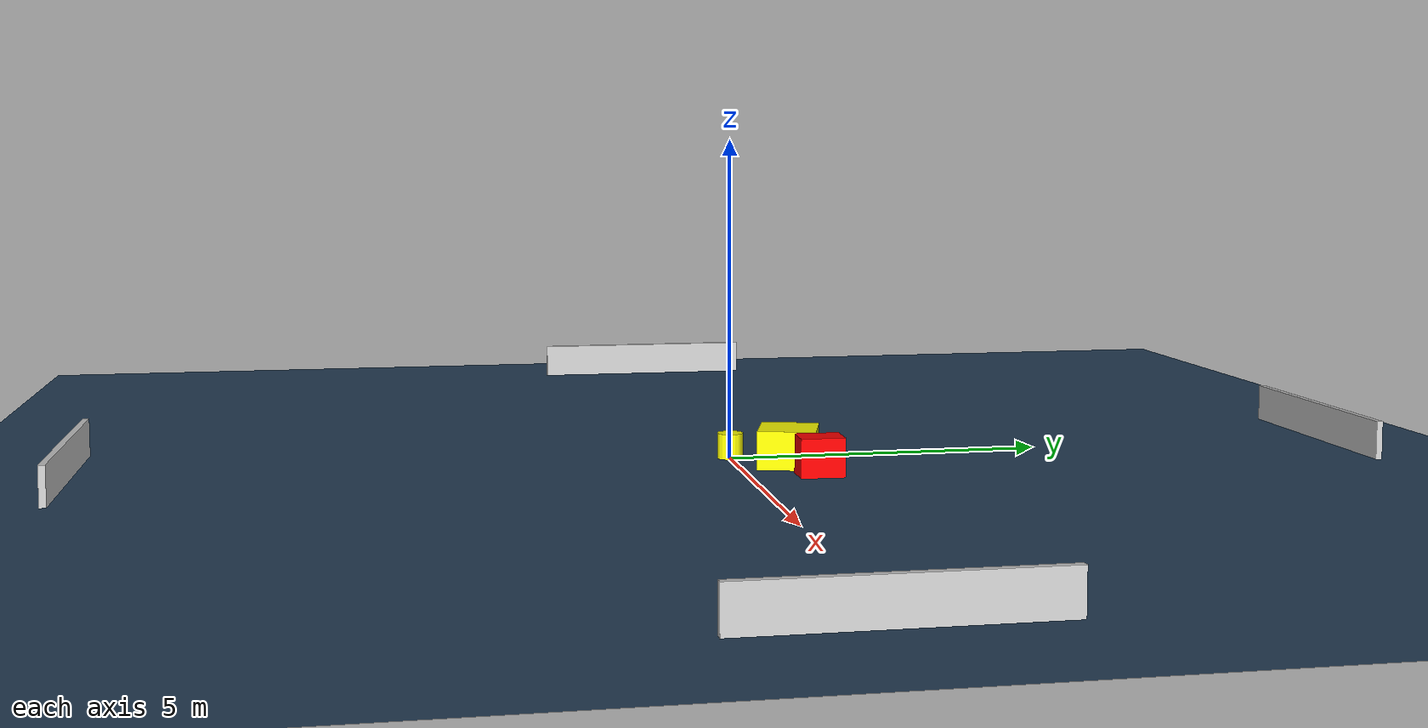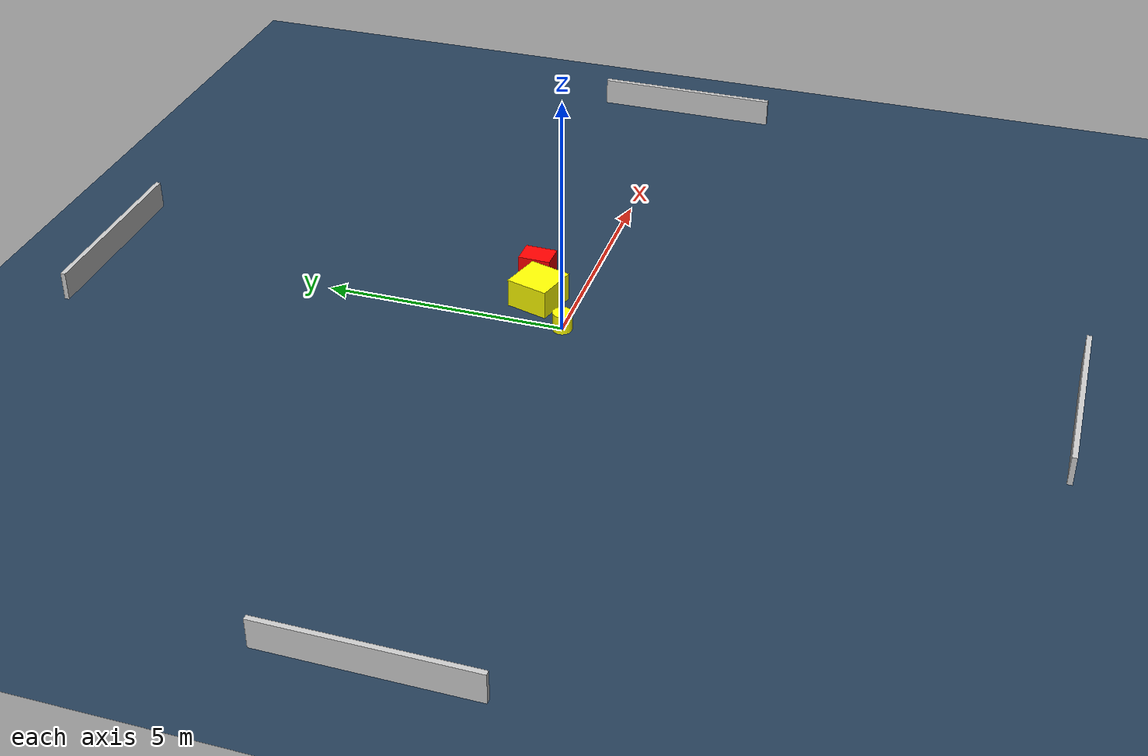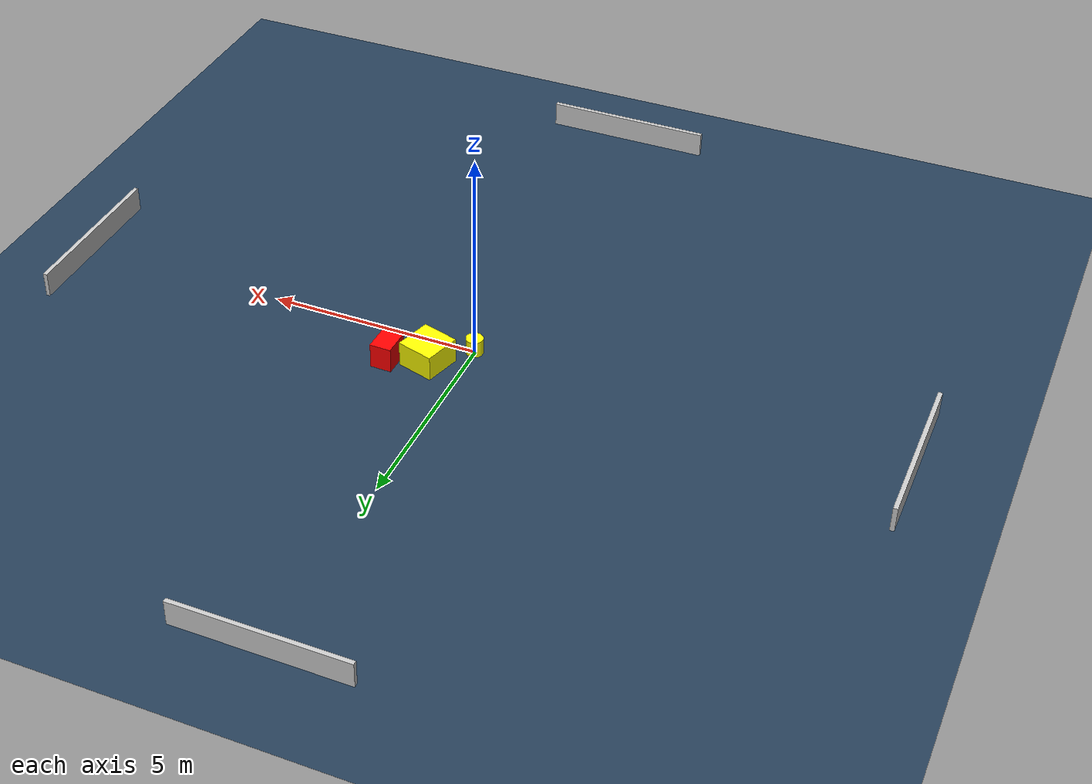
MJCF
<?xml version="1.0" ?>
<mujoco model="generated_environment">
  <option timestep="0.01" integrator="RK4" cone="elliptic"/>
  <default>
    <geom density="1"/>
  </default>
  <asset>
    <texture builtin="gradient" height="3072" name="skybox" rgb1="0.3 0.5 0.7" rgb2="0 0 0" type="skybox" width="512"/>
    <texture builtin="checker" height="300" name="groundplane" rgb1="0.2 0.3 0.4" rgb2="0.1 0.2 0.3" type="2d" width="300"/>
    <material name="groundplane" reflectance="0.2" texrepeat="5 5" texture="groundplane"/>
  </asset>
  <worldbody>
    <light dir="0 0 -1" directional="true" pos="0 0 1.5"/>
    <geom condim="3" friction="0.5 0.005 0.001" material="groundplane" name="floor" pos="0 0 0" size="0 0 0.05" type="plane"/>
    <body name="walls">
      <geom name="wall_1" condim="4" pos="-10.0 0.0 0.3" rgba="0.800000011920929 0.800000011920929 0.800000011920929 1.0" size="0.05 2.0 0.3" type="box"/>
      <geom name="wall_2" condim="4" pos="10.0 0.0 0.3" rgba="0.800000011920929 0.800000011920929 0.800000011920929 1.0" size="0.05 2.0 0.3" type="box"/>
      <geom name="wall_3" condim="4" pos="0.0 -10.0 0.3" rgba="0.800000011920929 0.800000011920929 0.800000011920929 1.0" size="2.0 0.05 0.3" type="box"/>
      <geom name="wall_4" condim="4" pos="0.0 10.0 0.3" rgba="0.800000011920929 0.800000011920929 0.800000011920929 1.0" size="2.0 0.05 0.3" type="box"/>
    </body>
    <body name="robot">
      <joint name="joint_x" type="slide" pos="0 0 0" axis="1 0 0"/>
      <joint name="joint_y" type="slide" pos="0 0 0" axis="0 1 0"/>
      <geom name="robot" type="cylinder" pos="0.0 0.0 0.2" size="0.2 0.2 0.0" mass="5.0" friction="1.0 0.005 0.0001" condim="4" rgba="1.0 1.0 0.0 1.0"/>
    </body>
    <body name="obstacle_1_movable">
      <geom name="obstacle_1_movable" condim="4" pos="0.8078469147797979 0.7618813419179408 0.3" euler="0 0 343.8593419664157" friction="0.0 0.005 0.001" rgba="1.0 1.0 0.0 1.0" size="0.44290891846689795 0.44912859356906276 0.3" type="box" mass="0.1"/>
      <joint type="free"/>
    </body>
    <body name="obstacle_2_static">
      <geom name="obstacle_2_static" condim="4" pos="1.6626263803685803 1.0575455630743078 0.3" euler="0 0 268.7985375170091" friction="0.0 0.005 0.001" rgba="1.0 0.0 0.0 1.0" size="0.33783986275470423 0.2505009633468527 0.3" type="box"/>
    </body>
  </worldbody>
  <actuator>
    <motor name="actuator_x" joint="joint_x" gear="1" ctrlrange="-1 1"/>
    <motor name="actuator_y" joint="joint_y" gear="1" ctrlrange="-1 1"/>
  </actuator>
</mujoco>
